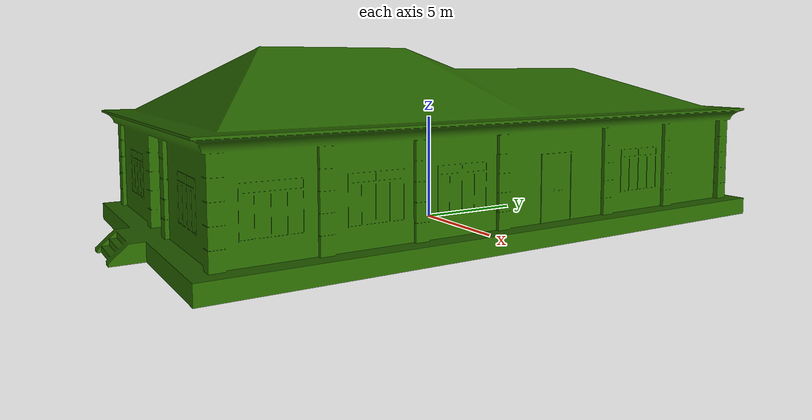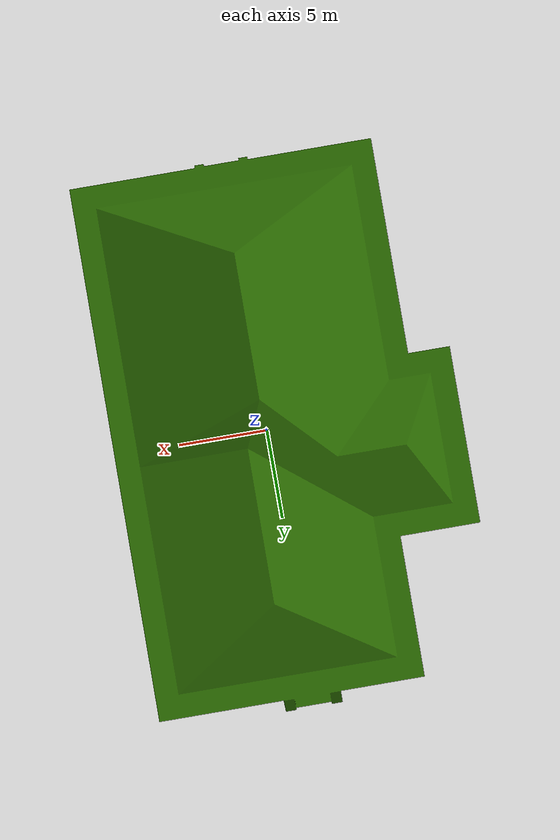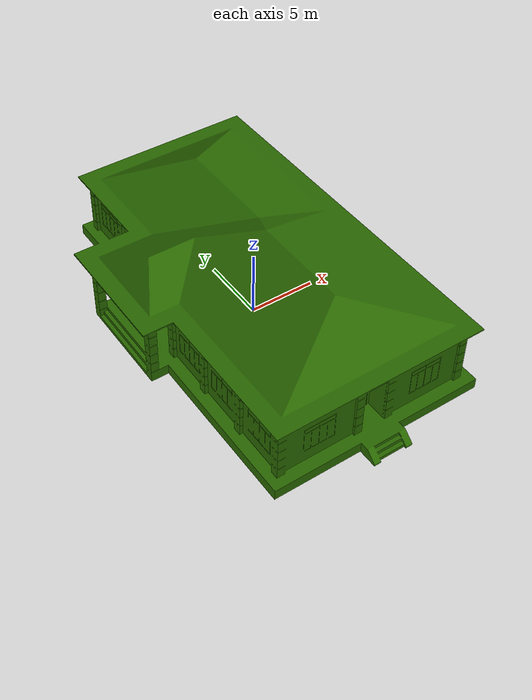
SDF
<?xml version="1.0" ?>
<sdf version="1.8">
  <model name="Electrical_Building_2">
    <static>true</static>
    <link name="link">
      <collision name="collision">
        <geometry>
          <mesh>
            <uri>model://Electrical_Building_2/Meshes/Electrical_Building_2.stl</uri>
            <scale>0.001 0.001 0.001</scale>
          </mesh>
        </geometry>
      </collision>

      <visual name="visual">
        <geometry>
          <mesh>
            <uri>model://Electrical_Building_2/Meshes/Electrical_Building_2.stl</uri>
            <scale>0.001 0.001 0.001</scale>
          </mesh>
        </geometry>
        <material>
          <diffuse>0.161 0.408 0 1</diffuse>
        </material>
      </visual>
    </link>
  </model>
</sdf>
